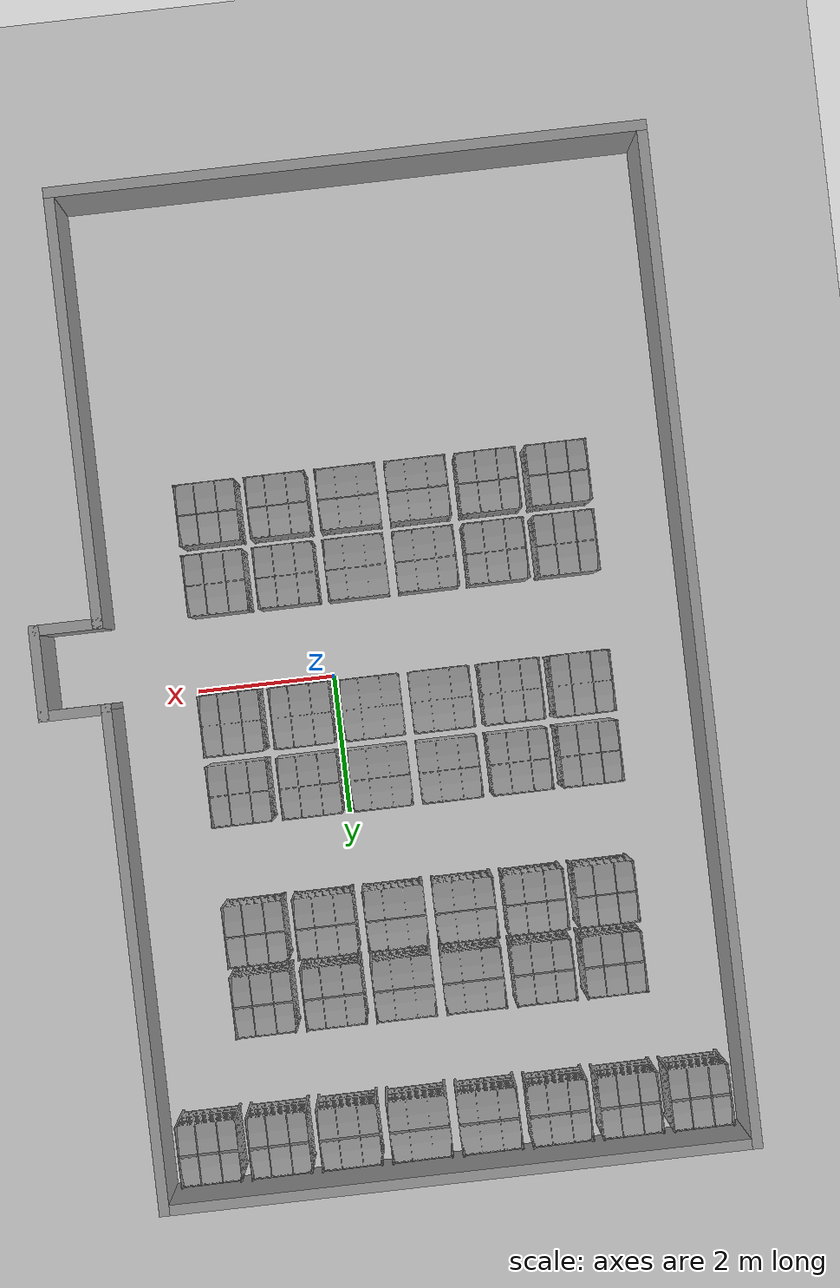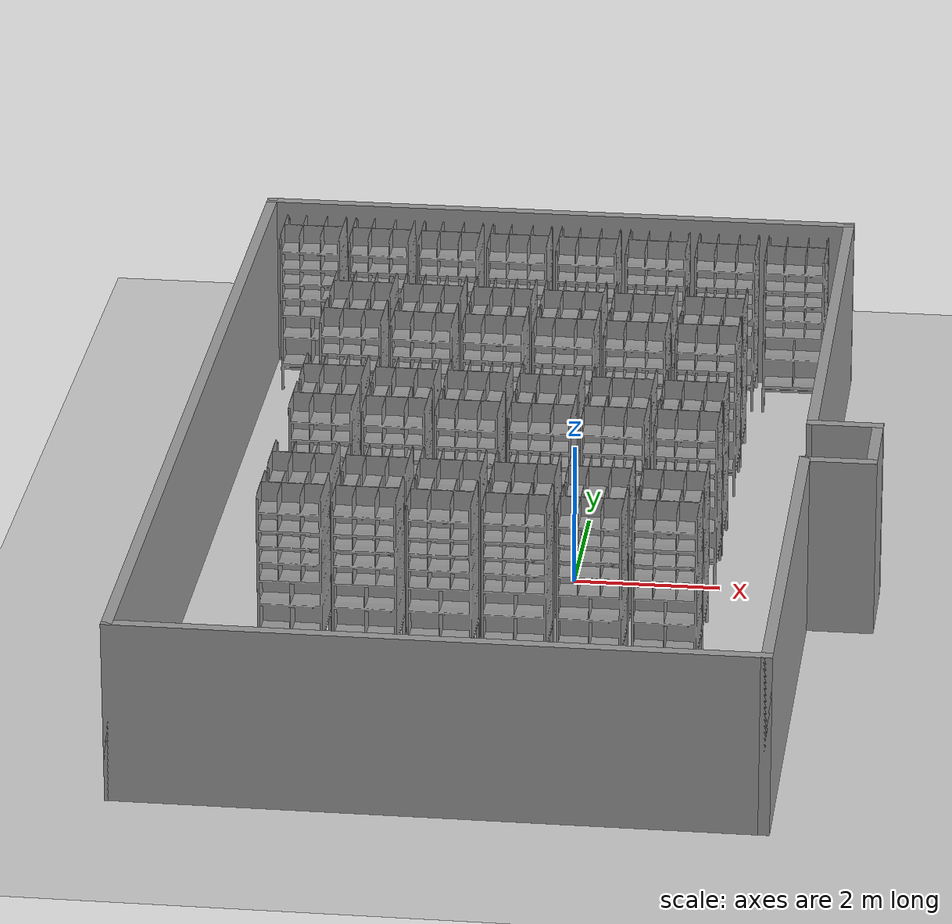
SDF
<sdf version="1.7">
 <world name="default">
  <light name="sun" type="directional">
   <pose>0 0 10 0 -0 0</pose>
   <diffuse>0.8 0.8 0.8 1</diffuse>
   <specular>0.2 0.2 0.2 1</specular>
   <attenuation>
    <range>1000</range>
    <constant>0.9</constant>
    <linear>0.01</linear>
    <quadratic>0.001</quadratic>
   </attenuation>
   <direction>-0.5 0.1 -0.9</direction>
   <spot><inner_angle>0</inner_angle><outer_angle>0</outer_angle><falloff>0</falloff></spot>
  </light>
  <model name="ground_plane">
   <static>1</static>
   <link name="link">
    <collision name="collision">
     <geometry><plane><normal>0 0 1</normal><size>100 100</size></plane></geometry>
     <surface>
      <contact><collide_bitmask>65535</collide_bitmask></contact>
      <friction><ode><mu>100</mu><mu2>50</mu2></ode></friction>
     </surface>
    </collision>
    <visual name="visual">
     <cast_shadows>0</cast_shadows>
     <geometry><plane><normal>0 0 1</normal><size>100 100</size></plane></geometry>
     <material>
      <script><uri>file://media/materials/scripts/gazebo.material</uri><name>Gazebo/Grey</name></script>
     </material>
    </visual>
   </link>
  </model>
  <gravity>0 0 -9.8</gravity>
  <magnetic_field>6e-06 2.3e-05 -4.2e-05</magnetic_field>
  <atmosphere type="adiabatic"/>
  <physics type="ode">
   <max_step_size>0.001</max_step_size>
   <real_time_factor>1</real_time_factor>
   <real_time_update_rate>1000</real_time_update_rate>
  </physics>
  <scene><ambient>0.4 0.4 0.4 1</ambient><background>0.7 0.7 0.7 1</background><shadows>1</shadows></scene>
  <spherical_coordinates>
   <surface_model>EARTH_WGS84</surface_model>
   <latitude_deg>0</latitude_deg>
   <longitude_deg>0</longitude_deg>
   <elevation>0</elevation>
   <heading_deg>0</heading_deg>
  </spherical_coordinates>
  <model name="medium_warehouse">
   <pose>-0.55 -0.005942 0 0 -0 0</pose>
   <link name="Wall_0">
    <collision name="Wall_0_Collision">
     <geometry><box><size>8.55 0.15 2.5</size></box></geometry>
     <pose>0 0 1.25 0 -0 0</pose>
    </collision>
    <visual name="Wall_0_Visual">
     <pose>0 0 1.25 0 -0 0</pose>
     <geometry><box><size>8.55 0.15 2.5</size></box></geometry>
     <material>
      <script><uri>file://media/materials/scripts/gazebo.material</uri><name>Gazebo/Grey</name></script>
      <ambient>1 1 1 1</ambient>
     </material>
     <meta><layer>0</layer></meta>
    </visual>
    <pose>-0.45 -7.20606 0 0 -0 0</pose>
   </link>
   <link name="Wall_11">
    <collision name="Wall_11_Collision">
     <geometry><box><size>14.562 0.15 2.5</size></box></geometry>
     <pose>0 0 1.25 0 -0 0</pose>
    </collision>
    <visual name="Wall_11_Visual">
     <pose>0 0 1.25 0 -0 0</pose>
     <geometry><box><size>14.562 0.15 2.5</size></box></geometry>
     <material>
      <script><uri>file://media/materials/scripts/gazebo.material</uri><name>Gazebo/Grey</name></script>
      <ambient>1 1 1 1</ambient>
     </material>
     <meta><layer>0</layer></meta>
    </visual>
    <pose>-4.65 -5.8e-05 0 0 -0 -1.5708</pose>
   </link>
   <link name="Wall_15">
    <collision name="Wall_15_Collision">
     <geometry><box><size>6.25 0.15 2.5</size></box></geometry>
     <pose>0 0 1.25 0 -0 0</pose>
    </collision>
    <visual name="Wall_15_Visual">
     <pose>0 0 1.25 0 -0 0</pose>
     <geometry><box><size>6.25 0.15 2.5</size></box></geometry>
     <material>
      <script><uri>file://media/materials/scripts/gazebo.material</uri><name>Gazebo/Grey</name></script>
      <ambient>1 1 1 1</ambient>
     </material>
     <meta><layer>0</layer></meta>
    </visual>
    <pose>3.75 -4.15606 0 0 -0 1.5708</pose>
   </link>
   <link name="Wall_16">
    <collision name="Wall_16_Collision">
     <geometry><box><size>1.05 0.15 2.5</size></box></geometry>
     <pose>0 0 1.25 0 -0 0</pose>
    </collision>
    <visual name="Wall_16_Visual">
     <pose>0 0 1.25 0 -0 0</pose>
     <geometry><box><size>1.05 0.15 2.5</size></box></geometry>
     <material>
      <script><uri>file://media/materials/scripts/gazebo.material</uri><name>Gazebo/Grey</name></script>
      <ambient>1 1 1 1</ambient>
     </material>
     <meta><layer>0</layer></meta>
    </visual>
    <pose>4.2 -1.10606 0 0 -0 0</pose>
   </link>
   <link name="Wall_19">
    <collision name="Wall_19_Collision">
     <geometry><box><size>7.25001 0.15 2.5</size></box></geometry>
     <pose>0 0 1.25 0 -0 0</pose>
    </collision>
    <visual name="Wall_19_Visual">
     <pose>0 0 1.25 0 -0 0</pose>
     <geometry><box><size>7.25001 0.15 2.5</size></box></geometry>
     <material>
      <script><uri>file://media/materials/scripts/gazebo.material</uri><name>Gazebo/Grey</name></script>
      <ambient>1 1 1 1</ambient>
     </material>
     <meta><layer>0</layer></meta>
    </visual>
    <pose>3.7555 3.65594 0 0 -0 1.57235</pose>
   </link>
   <link name="Wall_23">
    <collision name="Wall_23_Collision">
     <geometry><box><size>1.362 0.15 2.5</size></box></geometry>
     <pose>0 0 1.25 0 -0 0</pose>
    </collision>
    <visual name="Wall_23_Visual">
     <pose>0 0 1.25 0 -0 0</pose>
     <geometry><box><size>1.362 0.15 2.5</size></box></geometry>
     <material>
      <script><uri>file://media/materials/scripts/gazebo.material</uri><name>Gazebo/Grey</name></script>
      <ambient>1 1 1 1</ambient>
     </material>
     <meta><layer>0</layer></meta>
    </visual>
    <pose>4.65 -0.500058 0 0 -0 1.5708</pose>
   </link>
   <link name="Wall_25">
    <collision name="Wall_25_Collision">
     <geometry><box><size>1.039 0.15 2.5</size></box></geometry>
     <pose>0 0 1.25 0 -0 0</pose>
    </collision>
    <visual name="Wall_25_Visual">
     <pose>0 0 1.25 0 -0 0</pose>
     <geometry><box><size>1.039 0.15 2.5</size></box></geometry>
     <material>
      <script><uri>file://media/materials/scripts/gazebo.material</uri><name>Gazebo/Grey</name></script>
      <ambient>1 1 1 1</ambient>
     </material>
     <meta><layer>0</layer></meta>
    </visual>
    <pose>4.2055 0.105942 0 0 -0 3.14159</pose>
   </link>
   <link name="Wall_9">
    <collision name="Wall_9_Collision">
     <geometry><box><size>8.55 0.15 2.5</size></box></geometry>
     <pose>0 0 1.25 0 -0 0</pose>
    </collision>
    <visual name="Wall_9_Visual">
     <pose>0 0 1.25 0 -0 0</pose>
     <geometry><box><size>8.55 0.15 2.5</size></box></geometry>
     <material>
      <script><uri>file://media/materials/scripts/gazebo.material</uri><name>Gazebo/Grey</name></script>
      <ambient>1 1 1 1</ambient>
     </material>
     <meta><layer>0</layer></meta>
    </visual>
    <pose>-0.45 7.20594 0 0 -0 3.14159</pose>
   </link>
   <static>1</static>
  </model>
  <model name="Amazon Pod">
   <link name="pod_link">
    <inertial>
     <pose>0 0 1.2045 0 -0 0</pose>
     <mass>76.26</mass>
     <inertia>
      <ixx>47</ixx>
      <ixy>-0.003456</ixy>
      <ixz>0.001474</ixz>
      <izz>13.075</izz>
      <iyz>-0.014439</iyz>
      <iyy>47</iyy>
     </inertia>
    </inertial>
    <visual name="pod_visual">
     <pose>0 0 0 1.5707 -0 0</pose>
     <material>
      <script><uri>file://media/materials/scripts/gazebo.material</uri><name>Gazebo/Grey</name></script>
     </material>
     <geometry><mesh><uri>model://kiva_pod/meshes/pod_lowres.stl</uri></mesh></geometry>
    </visual>
    <collision name="pod_collision">
     <pose>0 0 0 1.5707 -0 0</pose>
     <geometry><mesh><uri>model://kiva_pod/meshes/pod_lowres.stl</uri></mesh></geometry>
     <surface>
      <friction><ode><mu>0.8</mu><mu2>0.8</mu2><fdir1>0 0 0</fdir1><slip1>1</slip1><slip2>1</slip2></ode></friction>
     </surface>
    </collision>
   </link>
   <pose>-4.49937 6.50047 9e-06 8.7e-05 -1.1e-05 0.009453</pose>
  </model>
  <model name="Amazon Pod_clone">
   <link name="pod_link">
    <inertial>
     <pose>0 0 1.2045 0 -0 0</pose>
     <mass>76.26</mass>
     <inertia>
      <ixx>47</ixx>
      <ixy>-0.003456</ixy>
      <ixz>0.001474</ixz>
      <izz>13.075</izz>
      <iyz>-0.014439</iyz>
      <iyy>47</iyy>
     </inertia>
    </inertial>
    <visual name="pod_visual">
     <pose>0 0 0 1.5707 -0 0</pose>
     <material>
      <script><uri>file://media/materials/scripts/gazebo.material</uri><name>Gazebo/Grey</name></script>
     </material>
     <geometry><mesh><uri>model://kiva_pod/meshes/pod_lowres.stl</uri></mesh></geometry>
    </visual>
    <collision name="pod_collision">
     <pose>0 0 0 1.5707 -0 0</pose>
     <geometry><mesh><uri>model://kiva_pod/meshes/pod_lowres.stl</uri></mesh></geometry>
     <surface>
      <friction><ode><mu>0.8</mu><mu2>0.8</mu2><fdir1>0 0 0</fdir1><slip1>1</slip1><slip2>1</slip2></ode></friction>
     </surface>
    </collision>
   </link>
   <pose>-3.49948 6.50045 1e-06 0.000101 7e-06 0.008928</pose>
  </model>
  <model name="Amazon Pod_clone_0">
   <link name="pod_link">
    <inertial>
     <pose>0 0 1.2045 0 -0 0</pose>
     <mass>76.26</mass>
     <inertia>
      <ixx>47</ixx>
      <ixy>-0.003456</ixy>
      <ixz>0.001474</ixz>
      <izz>13.075</izz>
      <iyz>-0.014439</iyz>
      <iyy>47</iyy>
     </inertia>
    </inertial>
    <visual name="pod_visual">
     <pose>0 0 0 1.5707 -0 0</pose>
     <material>
      <script><uri>file://media/materials/scripts/gazebo.material</uri><name>Gazebo/Grey</name></script>
     </material>
     <geometry><mesh><uri>model://kiva_pod/meshes/pod_lowres.stl</uri></mesh></geometry>
    </visual>
    <collision name="pod_collision">
     <pose>0 0 0 1.5707 -0 0</pose>
     <geometry><mesh><uri>model://kiva_pod/meshes/pod_lowres.stl</uri></mesh></geometry>
     <surface>
      <friction><ode><mu>0.8</mu><mu2>0.8</mu2><fdir1>0 0 0</fdir1><slip1>1</slip1><slip2>1</slip2></ode></friction>
     </surface>
    </collision>
   </link>
   <pose>-2.49945 6.50048 -0 9.8e-05 -1e-06 0.008801</pose>
  </model>
  <model name="Amazon Pod_clone_1">
   <link name="pod_link">
    <inertial>
     <pose>0 0 1.2045 0 -0 0</pose>
     <mass>76.26</mass>
     <inertia>
      <ixx>47</ixx>
      <ixy>-0.003456</ixy>
      <ixz>0.001474</ixz>
      <izz>13.075</izz>
      <iyz>-0.014439</iyz>
      <iyy>47</iyy>
     </inertia>
    </inertial>
    <visual name="pod_visual">
     <pose>0 0 0 1.5707 -0 0</pose>
     <material>
      <script><uri>file://media/materials/scripts/gazebo.material</uri><name>Gazebo/Grey</name></script>
     </material>
     <geometry><mesh><uri>model://kiva_pod/meshes/pod_lowres.stl</uri></mesh></geometry>
    </visual>
    <collision name="pod_collision">
     <pose>0 0 0 1.5707 -0 0</pose>
     <geometry><mesh><uri>model://kiva_pod/meshes/pod_lowres.stl</uri></mesh></geometry>
     <surface>
      <friction><ode><mu>0.8</mu><mu2>0.8</mu2><fdir1>0 0 0</fdir1><slip1>1</slip1><slip2>1</slip2></ode></friction>
     </surface>
    </collision>
   </link>
   <pose>-1.49951 6.50048 2e-06 9.4e-05 8e-06 0.0076</pose>
  </model>
  <model name="Amazon Pod_clone_2">
   <link name="pod_link">
    <inertial>
     <pose>0 0 1.2045 0 -0 0</pose>
     <mass>76.26</mass>
     <inertia>
      <ixx>47</ixx>
      <ixy>-0.003456</ixy>
      <ixz>0.001474</ixz>
      <izz>13.075</izz>
      <iyz>-0.014439</iyz>
      <iyy>47</iyy>
     </inertia>
    </inertial>
    <visual name="pod_visual">
     <pose>0 0 0 1.5707 -0 0</pose>
     <material>
      <script><uri>file://media/materials/scripts/gazebo.material</uri><name>Gazebo/Grey</name></script>
     </material>
     <geometry><mesh><uri>model://kiva_pod/meshes/pod_lowres.stl</uri></mesh></geometry>
    </visual>
    <collision name="pod_collision">
     <pose>0 0 0 1.5707 -0 0</pose>
     <geometry><mesh><uri>model://kiva_pod/meshes/pod_lowres.stl</uri></mesh></geometry>
     <surface>
      <friction><ode><mu>0.8</mu><mu2>0.8</mu2><fdir1>0 0 0</fdir1><slip1>1</slip1><slip2>1</slip2></ode></friction>
     </surface>
    </collision>
   </link>
   <pose>-0.499565 6.50046 1e-06 0.000106 1e-05 0.008216</pose>
  </model>
  <model name="Amazon Pod_clone_3">
   <link name="pod_link">
    <inertial>
     <pose>0 0 1.2045 0 -0 0</pose>
     <mass>76.26</mass>
     <inertia>
      <ixx>47</ixx>
      <ixy>-0.003456</ixy>
      <ixz>0.001474</ixz>
      <izz>13.075</izz>
      <iyz>-0.014439</iyz>
      <iyy>47</iyy>
     </inertia>
    </inertial>
    <visual name="pod_visual">
     <pose>0 0 0 1.5707 -0 0</pose>
     <material>
      <script><uri>file://media/materials/scripts/gazebo.material</uri><name>Gazebo/Grey</name></script>
     </material>
     <geometry><mesh><uri>model://kiva_pod/meshes/pod_lowres.stl</uri></mesh></geometry>
    </visual>
    <collision name="pod_collision">
     <pose>0 0 0 1.5707 -0 0</pose>
     <geometry><mesh><uri>model://kiva_pod/meshes/pod_lowres.stl</uri></mesh></geometry>
     <surface>
      <friction><ode><mu>0.8</mu><mu2>0.8</mu2><fdir1>0 0 0</fdir1><slip1>1</slip1><slip2>1</slip2></ode></friction>
     </surface>
    </collision>
   </link>
   <pose>0.500474 6.5004 -1e-05 8.3e-05 1.1e-05 0.008032</pose>
  </model>
  <model name="Amazon Pod_clone_4">
   <link name="pod_link">
    <inertial>
     <pose>0 0 1.2045 0 -0 0</pose>
     <mass>76.26</mass>
     <inertia>
      <ixx>47</ixx>
      <ixy>-0.003456</ixy>
      <ixz>0.001474</ixz>
      <izz>13.075</izz>
      <iyz>-0.014439</iyz>
      <iyy>47</iyy>
     </inertia>
    </inertial>
    <visual name="pod_visual">
     <pose>0 0 0 1.5707 -0 0</pose>
     <material>
      <script><uri>file://media/materials/scripts/gazebo.material</uri><name>Gazebo/Grey</name></script>
     </material>
     <geometry><mesh><uri>model://kiva_pod/meshes/pod_lowres.stl</uri></mesh></geometry>
    </visual>
    <collision name="pod_collision">
     <pose>0 0 0 1.5707 -0 0</pose>
     <geometry><mesh><uri>model://kiva_pod/meshes/pod_lowres.stl</uri></mesh></geometry>
     <surface>
      <friction><ode><mu>0.8</mu><mu2>0.8</mu2><fdir1>0 0 0</fdir1><slip1>1</slip1><slip2>1</slip2></ode></friction>
     </surface>
    </collision>
   </link>
   <pose>1.50046 6.50046 3e-06 9.9e-05 -8e-06 0.00685</pose>
  </model>
  <model name="Amazon Pod_clone_5">
   <link name="pod_link">
    <inertial>
     <pose>0 0 1.2045 0 -0 0</pose>
     <mass>76.26</mass>
     <inertia>
      <ixx>47</ixx>
      <ixy>-0.003456</ixy>
      <ixz>0.001474</ixz>
      <izz>13.075</izz>
      <iyz>-0.014439</iyz>
      <iyy>47</iyy>
     </inertia>
    </inertial>
    <visual name="pod_visual">
     <pose>0 0 0 1.5707 -0 0</pose>
     <material>
      <script><uri>file://media/materials/scripts/gazebo.material</uri><name>Gazebo/Grey</name></script>
     </material>
     <geometry><mesh><uri>model://kiva_pod/meshes/pod_lowres.stl</uri></mesh></geometry>
    </visual>
    <collision name="pod_collision">
     <pose>0 0 0 1.5707 -0 0</pose>
     <geometry><mesh><uri>model://kiva_pod/meshes/pod_lowres.stl</uri></mesh></geometry>
     <surface>
      <friction><ode><mu>0.8</mu><mu2>0.8</mu2><fdir1>0 0 0</fdir1><slip1>1</slip1><slip2>1</slip2></ode></friction>
     </surface>
    </collision>
   </link>
   <pose>2.50045 6.50036 -5e-06 8.7e-05 3e-06 0.007302</pose>
  </model>
  <model name="Amazon Pod_clone_6">
   <link name="pod_link">
    <inertial>
     <pose>0 0 1.2045 0 -0 0</pose>
     <mass>76.26</mass>
     <inertia>
      <ixx>47</ixx>
      <ixy>-0.003456</ixy>
      <ixz>0.001474</ixz>
      <izz>13.075</izz>
      <iyz>-0.014439</iyz>
      <iyy>47</iyy>
     </inertia>
    </inertial>
    <visual name="pod_visual">
     <pose>0 0 0 1.5707 -0 0</pose>
     <material>
      <script><uri>file://media/materials/scripts/gazebo.material</uri><name>Gazebo/Grey</name></script>
     </material>
     <geometry><mesh><uri>model://kiva_pod/meshes/pod_lowres.stl</uri></mesh></geometry>
    </visual>
    <collision name="pod_collision">
     <pose>0 0 0 1.5707 -0 0</pose>
     <geometry><mesh><uri>model://kiva_pod/meshes/pod_lowres.stl</uri></mesh></geometry>
     <surface>
      <friction><ode><mu>0.8</mu><mu2>0.8</mu2><fdir1>0 0 0</fdir1><slip1>1</slip1><slip2>1</slip2></ode></friction>
     </surface>
    </collision>
   </link>
   <pose>-3.49961 4.50033 0 9.7e-05 -0 0.006651</pose>
  </model>
  <model name="Amazon Pod_clone_7">
   <link name="pod_link">
    <inertial>
     <pose>0 0 1.2045 0 -0 0</pose>
     <mass>76.26</mass>
     <inertia>
      <ixx>47</ixx>
      <ixy>-0.003456</ixy>
      <ixz>0.001474</ixz>
      <izz>13.075</izz>
      <iyz>-0.014439</iyz>
      <iyy>47</iyy>
     </inertia>
    </inertial>
    <visual name="pod_visual">
     <pose>0 0 0 1.5707 -0 0</pose>
     <material>
      <script><uri>file://media/materials/scripts/gazebo.material</uri><name>Gazebo/Grey</name></script>
     </material>
     <geometry><mesh><uri>model://kiva_pod/meshes/pod_lowres.stl</uri></mesh></geometry>
    </visual>
    <collision name="pod_collision">
     <pose>0 0 0 1.5707 -0 0</pose>
     <geometry><mesh><uri>model://kiva_pod/meshes/pod_lowres.stl</uri></mesh></geometry>
     <surface>
      <friction><ode><mu>0.8</mu><mu2>0.8</mu2><fdir1>0 0 0</fdir1><slip1>1</slip1><slip2>1</slip2></ode></friction>
     </surface>
    </collision>
   </link>
   <pose>-2.49958 4.5003 -0 9.2e-05 -6e-06 0.006768</pose>
  </model>
  <model name="Amazon Pod_clone_8">
   <link name="pod_link">
    <inertial>
     <pose>0 0 1.2045 0 -0 0</pose>
     <mass>76.26</mass>
     <inertia>
      <ixx>47</ixx>
      <ixy>-0.003456</ixy>
      <ixz>0.001474</ixz>
      <izz>13.075</izz>
      <iyz>-0.014439</iyz>
      <iyy>47</iyy>
     </inertia>
    </inertial>
    <visual name="pod_visual">
     <pose>0 0 0 1.5707 -0 0</pose>
     <material>
      <script><uri>file://media/materials/scripts/gazebo.material</uri><name>Gazebo/Grey</name></script>
     </material>
     <geometry><mesh><uri>model://kiva_pod/meshes/pod_lowres.stl</uri></mesh></geometry>
    </visual>
    <collision name="pod_collision">
     <pose>0 0 0 1.5707 -0 0</pose>
     <geometry><mesh><uri>model://kiva_pod/meshes/pod_lowres.stl</uri></mesh></geometry>
     <surface>
      <friction><ode><mu>0.8</mu><mu2>0.8</mu2><fdir1>0 0 0</fdir1><slip1>1</slip1><slip2>1</slip2></ode></friction>
     </surface>
    </collision>
   </link>
   <pose>-1.49967 4.50032 -2e-06 9.8e-05 5e-06 0.006047</pose>
  </model>
  <model name="Amazon Pod_clone_9">
   <link name="pod_link">
    <inertial>
     <pose>0 0 1.2045 0 -0 0</pose>
     <mass>76.26</mass>
     <inertia>
      <ixx>47</ixx>
      <ixy>-0.003456</ixy>
      <ixz>0.001474</ixz>
      <izz>13.075</izz>
      <iyz>-0.014439</iyz>
      <iyy>47</iyy>
     </inertia>
    </inertial>
    <visual name="pod_visual">
     <pose>0 0 0 1.5707 -0 0</pose>
     <material>
      <script><uri>file://media/materials/scripts/gazebo.material</uri><name>Gazebo/Grey</name></script>
     </material>
     <geometry><mesh><uri>model://kiva_pod/meshes/pod_lowres.stl</uri></mesh></geometry>
    </visual>
    <collision name="pod_collision">
     <pose>0 0 0 1.5707 -0 0</pose>
     <geometry><mesh><uri>model://kiva_pod/meshes/pod_lowres.stl</uri></mesh></geometry>
     <surface>
      <friction><ode><mu>0.8</mu><mu2>0.8</mu2><fdir1>0 0 0</fdir1><slip1>1</slip1><slip2>1</slip2></ode></friction>
     </surface>
    </collision>
   </link>
   <pose>-0.499635 4.50034 5e-06 0.0001 -7e-06 0.006312</pose>
  </model>
  <model name="Amazon Pod_clone_10">
   <link name="pod_link">
    <inertial>
     <pose>0 0 1.2045 0 -0 0</pose>
     <mass>76.26</mass>
     <inertia>
      <ixx>47</ixx>
      <ixy>-0.003456</ixy>
      <ixz>0.001474</ixz>
      <izz>13.075</izz>
      <iyz>-0.014439</iyz>
      <iyy>47</iyy>
     </inertia>
    </inertial>
    <visual name="pod_visual">
     <pose>0 0 0 1.5707 -0 0</pose>
     <material>
      <script><uri>file://media/materials/scripts/gazebo.material</uri><name>Gazebo/Grey</name></script>
     </material>
     <geometry><mesh><uri>model://kiva_pod/meshes/pod_lowres.stl</uri></mesh></geometry>
    </visual>
    <collision name="pod_collision">
     <pose>0 0 0 1.5707 -0 0</pose>
     <geometry><mesh><uri>model://kiva_pod/meshes/pod_lowres.stl</uri></mesh></geometry>
     <surface>
      <friction><ode><mu>0.8</mu><mu2>0.8</mu2><fdir1>0 0 0</fdir1><slip1>1</slip1><slip2>1</slip2></ode></friction>
     </surface>
    </collision>
   </link>
   <pose>0.500379 4.50035 2e-06 9.6e-05 -5e-06 0.006698</pose>
  </model>
  <model name="Amazon Pod_clone_11">
   <link name="pod_link">
    <inertial>
     <pose>0 0 1.2045 0 -0 0</pose>
     <mass>76.26</mass>
     <inertia>
      <ixx>47</ixx>
      <ixy>-0.003456</ixy>
      <ixz>0.001474</ixz>
      <izz>13.075</izz>
      <iyz>-0.014439</iyz>
      <iyy>47</iyy>
     </inertia>
    </inertial>
    <visual name="pod_visual">
     <pose>0 0 0 1.5707 -0 0</pose>
     <material>
      <script><uri>file://media/materials/scripts/gazebo.material</uri><name>Gazebo/Grey</name></script>
     </material>
     <geometry><mesh><uri>model://kiva_pod/meshes/pod_lowres.stl</uri></mesh></geometry>
    </visual>
    <collision name="pod_collision">
     <pose>0 0 0 1.5707 -0 0</pose>
     <geometry><mesh><uri>model://kiva_pod/meshes/pod_lowres.stl</uri></mesh></geometry>
     <surface>
      <friction><ode><mu>0.8</mu><mu2>0.8</mu2><fdir1>0 0 0</fdir1><slip1>1</slip1><slip2>1</slip2></ode></friction>
     </surface>
    </collision>
   </link>
   <pose>1.50042 4.5003 2e-06 9.9e-05 -2e-06 0.006509</pose>
  </model>
  <model name="Amazon Pod_clone_12">
   <link name="pod_link">
    <inertial>
     <pose>0 0 1.2045 0 -0 0</pose>
     <mass>76.26</mass>
     <inertia>
      <ixx>47</ixx>
      <ixy>-0.003456</ixy>
      <ixz>0.001474</ixz>
      <izz>13.075</izz>
      <iyz>-0.014439</iyz>
      <iyy>47</iyy>
     </inertia>
    </inertial>
    <visual name="pod_visual">
     <pose>0 0 0 1.5707 -0 0</pose>
     <material>
      <script><uri>file://media/materials/scripts/gazebo.material</uri><name>Gazebo/Grey</name></script>
     </material>
     <geometry><mesh><uri>model://kiva_pod/meshes/pod_lowres.stl</uri></mesh></geometry>
    </visual>
    <collision name="pod_collision">
     <pose>0 0 0 1.5707 -0 0</pose>
     <geometry><mesh><uri>model://kiva_pod/meshes/pod_lowres.stl</uri></mesh></geometry>
     <surface>
      <friction><ode><mu>0.8</mu><mu2>0.8</mu2><fdir1>0 0 0</fdir1><slip1>1</slip1><slip2>1</slip2></ode></friction>
     </surface>
    </collision>
   </link>
   <pose>1.50032 3.50027 -1e-06 9e-05 -8e-06 0.005826</pose>
  </model>
  <model name="Amazon Pod_clone_13">
   <link name="pod_link">
    <inertial>
     <pose>0 0 1.2045 0 -0 0</pose>
     <mass>76.26</mass>
     <inertia>
      <ixx>47</ixx>
      <ixy>-0.003456</ixy>
      <ixz>0.001474</ixz>
      <izz>13.075</izz>
      <iyz>-0.014439</iyz>
      <iyy>47</iyy>
     </inertia>
    </inertial>
    <visual name="pod_visual">
     <pose>0 0 0 1.5707 -0 0</pose>
     <material>
      <script><uri>file://media/materials/scripts/gazebo.material</uri><name>Gazebo/Grey</name></script>
     </material>
     <geometry><mesh><uri>model://kiva_pod/meshes/pod_lowres.stl</uri></mesh></geometry>
    </visual>
    <collision name="pod_collision">
     <pose>0 0 0 1.5707 -0 0</pose>
     <geometry><mesh><uri>model://kiva_pod/meshes/pod_lowres.stl</uri></mesh></geometry>
     <surface>
      <friction><ode><mu>0.8</mu><mu2>0.8</mu2><fdir1>0 0 0</fdir1><slip1>1</slip1><slip2>1</slip2></ode></friction>
     </surface>
    </collision>
   </link>
   <pose>0.500337 3.50025 0 0.000103 -7e-06 0.005384</pose>
  </model>
  <model name="Amazon Pod_clone_14">
   <link name="pod_link">
    <inertial>
     <pose>0 0 1.2045 0 -0 0</pose>
     <mass>76.26</mass>
     <inertia>
      <ixx>47</ixx>
      <ixy>-0.003456</ixy>
      <ixz>0.001474</ixz>
      <izz>13.075</izz>
      <iyz>-0.014439</iyz>
      <iyy>47</iyy>
     </inertia>
    </inertial>
    <visual name="pod_visual">
     <pose>0 0 0 1.5707 -0 0</pose>
     <material>
      <script><uri>file://media/materials/scripts/gazebo.material</uri><name>Gazebo/Grey</name></script>
     </material>
     <geometry><mesh><uri>model://kiva_pod/meshes/pod_lowres.stl</uri></mesh></geometry>
    </visual>
    <collision name="pod_collision">
     <pose>0 0 0 1.5707 -0 0</pose>
     <geometry><mesh><uri>model://kiva_pod/meshes/pod_lowres.stl</uri></mesh></geometry>
     <surface>
      <friction><ode><mu>0.8</mu><mu2>0.8</mu2><fdir1>0 0 0</fdir1><slip1>1</slip1><slip2>1</slip2></ode></friction>
     </surface>
    </collision>
   </link>
   <pose>-0.499734 3.50027 -3e-06 9.6e-05 7e-06 0.005602</pose>
  </model>
  <model name="Amazon Pod_clone_15">
   <link name="pod_link">
    <inertial>
     <pose>0 0 1.2045 0 -0 0</pose>
     <mass>76.26</mass>
     <inertia>
      <ixx>47</ixx>
      <ixy>-0.003456</ixy>
      <ixz>0.001474</ixz>
      <izz>13.075</izz>
      <iyz>-0.014439</iyz>
      <iyy>47</iyy>
     </inertia>
    </inertial>
    <visual name="pod_visual">
     <pose>0 0 0 1.5707 -0 0</pose>
     <material>
      <script><uri>file://media/materials/scripts/gazebo.material</uri><name>Gazebo/Grey</name></script>
     </material>
     <geometry><mesh><uri>model://kiva_pod/meshes/pod_lowres.stl</uri></mesh></geometry>
    </visual>
    <collision name="pod_collision">
     <pose>0 0 0 1.5707 -0 0</pose>
     <geometry><mesh><uri>model://kiva_pod/meshes/pod_lowres.stl</uri></mesh></geometry>
     <surface>
      <friction><ode><mu>0.8</mu><mu2>0.8</mu2><fdir1>0 0 0</fdir1><slip1>1</slip1><slip2>1</slip2></ode></friction>
     </surface>
    </collision>
   </link>
   <pose>-1.49971 3.50029 7e-06 8.2e-05 2e-06 0.005694</pose>
  </model>
  <model name="Amazon Pod_clone_16">
   <link name="pod_link">
    <inertial>
     <pose>0 0 1.2045 0 -0 0</pose>
     <mass>76.26</mass>
     <inertia>
      <ixx>47</ixx>
      <ixy>-0.003456</ixy>
      <ixz>0.001474</ixz>
      <izz>13.075</izz>
      <iyz>-0.014439</iyz>
      <iyy>47</iyy>
     </inertia>
    </inertial>
    <visual name="pod_visual">
     <pose>0 0 0 1.5707 -0 0</pose>
     <material>
      <script><uri>file://media/materials/scripts/gazebo.material</uri><name>Gazebo/Grey</name></script>
     </material>
     <geometry><mesh><uri>model://kiva_pod/meshes/pod_lowres.stl</uri></mesh></geometry>
    </visual>
    <collision name="pod_collision">
     <pose>0 0 0 1.5707 -0 0</pose>
     <geometry><mesh><uri>model://kiva_pod/meshes/pod_lowres.stl</uri></mesh></geometry>
     <surface>
      <friction><ode><mu>0.8</mu><mu2>0.8</mu2><fdir1>0 0 0</fdir1><slip1>1</slip1><slip2>1</slip2></ode></friction>
     </surface>
    </collision>
   </link>
   <pose>-2.49964 3.50025 -2e-06 9.1e-05 0 0.006045</pose>
  </model>
  <model name="Amazon Pod_clone_17">
   <link name="pod_link">
    <inertial>
     <pose>0 0 1.2045 0 -0 0</pose>
     <mass>76.26</mass>
     <inertia>
      <ixx>47</ixx>
      <ixy>-0.003456</ixy>
      <ixz>0.001474</ixz>
      <izz>13.075</izz>
      <iyz>-0.014439</iyz>
      <iyy>47</iyy>
     </inertia>
    </inertial>
    <visual name="pod_visual">
     <pose>0 0 0 1.5707 -0 0</pose>
     <material>
      <script><uri>file://media/materials/scripts/gazebo.material</uri><name>Gazebo/Grey</name></script>
     </material>
     <geometry><mesh><uri>model://kiva_pod/meshes/pod_lowres.stl</uri></mesh></geometry>
    </visual>
    <collision name="pod_collision">
     <pose>0 0 0 1.5707 -0 0</pose>
     <geometry><mesh><uri>model://kiva_pod/meshes/pod_lowres.stl</uri></mesh></geometry>
     <surface>
      <friction><ode><mu>0.8</mu><mu2>0.8</mu2><fdir1>0 0 0</fdir1><slip1>1</slip1><slip2>1</slip2></ode></friction>
     </surface>
    </collision>
   </link>
   <pose>-3.49968 3.50031 -4e-06 9.8e-05 1.2e-05 0.005635</pose>
  </model>
  <model name="Amazon Pod_clone_18">
   <link name="pod_link">
    <inertial>
     <pose>0 0 1.2045 0 -0 0</pose>
     <mass>76.26</mass>
     <inertia>
      <ixx>47</ixx>
      <ixy>-0.003456</ixy>
      <ixz>0.001474</ixz>
      <izz>13.075</izz>
      <iyz>-0.014439</iyz>
      <iyy>47</iyy>
     </inertia>
    </inertial>
    <visual name="pod_visual">
     <pose>0 0 0 1.5707 -0 0</pose>
     <material>
      <script><uri>file://media/materials/scripts/gazebo.material</uri><name>Gazebo/Grey</name></script>
     </material>
     <geometry><mesh><uri>model://kiva_pod/meshes/pod_lowres.stl</uri></mesh></geometry>
    </visual>
    <collision name="pod_collision">
     <pose>0 0 0 1.5707 -0 0</pose>
     <geometry><mesh><uri>model://kiva_pod/meshes/pod_lowres.stl</uri></mesh></geometry>
     <surface>
      <friction><ode><mu>0.8</mu><mu2>0.8</mu2><fdir1>0 0 0</fdir1><slip1>1</slip1><slip2>1</slip2></ode></friction>
     </surface>
    </collision>
   </link>
   <pose>-3.49975 1.50022 -1e-06 9.2e-05 2e-06 0.005903</pose>
  </model>
  <model name="Amazon Pod_clone_19">
   <link name="pod_link">
    <inertial>
     <pose>0 0 1.2045 0 -0 0</pose>
     <mass>76.26</mass>
     <inertia>
      <ixx>47</ixx>
      <ixy>-0.003456</ixy>
      <ixz>0.001474</ixz>
      <izz>13.075</izz>
      <iyz>-0.014439</iyz>
      <iyy>47</iyy>
     </inertia>
    </inertial>
    <visual name="pod_visual">
     <pose>0 0 0 1.5707 -0 0</pose>
     <material>
      <script><uri>file://media/materials/scripts/gazebo.material</uri><name>Gazebo/Grey</name></script>
     </material>
     <geometry><mesh><uri>model://kiva_pod/meshes/pod_lowres.stl</uri></mesh></geometry>
    </visual>
    <collision name="pod_collision">
     <pose>0 0 0 1.5707 -0 0</pose>
     <geometry><mesh><uri>model://kiva_pod/meshes/pod_lowres.stl</uri></mesh></geometry>
     <surface>
      <friction><ode><mu>0.8</mu><mu2>0.8</mu2><fdir1>0 0 0</fdir1><slip1>1</slip1><slip2>1</slip2></ode></friction>
     </surface>
    </collision>
   </link>
   <pose>-2.49975 1.5002 2e-06 9e-05 -1e-06 0.005964</pose>
  </model>
  <model name="Amazon Pod_clone_20">
   <link name="pod_link">
    <inertial>
     <pose>0 0 1.2045 0 -0 0</pose>
     <mass>76.26</mass>
     <inertia>
      <ixx>47</ixx>
      <ixy>-0.003456</ixy>
      <ixz>0.001474</ixz>
      <izz>13.075</izz>
      <iyz>-0.014439</iyz>
      <iyy>47</iyy>
     </inertia>
    </inertial>
    <visual name="pod_visual">
     <pose>0 0 0 1.5707 -0 0</pose>
     <material>
      <script><uri>file://media/materials/scripts/gazebo.material</uri><name>Gazebo/Grey</name></script>
     </material>
     <geometry><mesh><uri>model://kiva_pod/meshes/pod_lowres.stl</uri></mesh></geometry>
    </visual>
    <collision name="pod_collision">
     <pose>0 0 0 1.5707 -0 0</pose>
     <geometry><mesh><uri>model://kiva_pod/meshes/pod_lowres.stl</uri></mesh></geometry>
     <surface>
      <friction><ode><mu>0.8</mu><mu2>0.8</mu2><fdir1>0 0 0</fdir1><slip1>1</slip1><slip2>1</slip2></ode></friction>
     </surface>
    </collision>
   </link>
   <pose>-1.49974 1.50019 -5e-06 9e-05 4e-06 0.005214</pose>
  </model>
  <model name="Amazon Pod_clone_21">
   <link name="pod_link">
    <inertial>
     <pose>0 0 1.2045 0 -0 0</pose>
     <mass>76.26</mass>
     <inertia>
      <ixx>47</ixx>
      <ixy>-0.003456</ixy>
      <ixz>0.001474</ixz>
      <izz>13.075</izz>
      <iyz>-0.014439</iyz>
      <iyy>47</iyy>
     </inertia>
    </inertial>
    <visual name="pod_visual">
     <pose>0 0 0 1.5707 -0 0</pose>
     <material>
      <script><uri>file://media/materials/scripts/gazebo.material</uri><name>Gazebo/Grey</name></script>
     </material>
     <geometry><mesh><uri>model://kiva_pod/meshes/pod_lowres.stl</uri></mesh></geometry>
    </visual>
    <collision name="pod_collision">
     <pose>0 0 0 1.5707 -0 0</pose>
     <geometry><mesh><uri>model://kiva_pod/meshes/pod_lowres.stl</uri></mesh></geometry>
     <surface>
      <friction><ode><mu>0.8</mu><mu2>0.8</mu2><fdir1>0 0 0</fdir1><slip1>1</slip1><slip2>1</slip2></ode></friction>
     </surface>
    </collision>
   </link>
   <pose>-0.499755 1.50021 1e-06 8.4e-05 -1.4e-05 0.005114</pose>
  </model>
  <model name="Amazon Pod_clone_22">
   <link name="pod_link">
    <inertial>
     <pose>0 0 1.2045 0 -0 0</pose>
     <mass>76.26</mass>
     <inertia>
      <ixx>47</ixx>
      <ixy>-0.003456</ixy>
      <ixz>0.001474</ixz>
      <izz>13.075</izz>
      <iyz>-0.014439</iyz>
      <iyy>47</iyy>
     </inertia>
    </inertial>
    <visual name="pod_visual">
     <pose>0 0 0 1.5707 -0 0</pose>
     <material>
      <script><uri>file://media/materials/scripts/gazebo.material</uri><name>Gazebo/Grey</name></script>
     </material>
     <geometry><mesh><uri>model://kiva_pod/meshes/pod_lowres.stl</uri></mesh></geometry>
    </visual>
    <collision name="pod_collision">
     <pose>0 0 0 1.5707 -0 0</pose>
     <geometry><mesh><uri>model://kiva_pod/meshes/pod_lowres.stl</uri></mesh></geometry>
     <surface>
      <friction><ode><mu>0.8</mu><mu2>0.8</mu2><fdir1>0 0 0</fdir1><slip1>1</slip1><slip2>1</slip2></ode></friction>
     </surface>
    </collision>
   </link>
   <pose>0.500284 1.50019 3e-06 8.2e-05 -8e-06 0.004627</pose>
  </model>
  <model name="Amazon Pod_clone_23">
   <link name="pod_link">
    <inertial>
     <pose>0 0 1.2045 0 -0 0</pose>
     <mass>76.26</mass>
     <inertia>
      <ixx>47</ixx>
      <ixy>-0.003456</ixy>
      <ixz>0.001474</ixz>
      <izz>13.075</izz>
      <iyz>-0.014439</iyz>
      <iyy>47</iyy>
     </inertia>
    </inertial>
    <visual name="pod_visual">
     <pose>0 0 0 1.5707 -0 0</pose>
     <material>
      <script><uri>file://media/materials/scripts/gazebo.material</uri><name>Gazebo/Grey</name></script>
     </material>
     <geometry><mesh><uri>model://kiva_pod/meshes/pod_lowres.stl</uri></mesh></geometry>
    </visual>
    <collision name="pod_collision">
     <pose>0 0 0 1.5707 -0 0</pose>
     <geometry><mesh><uri>model://kiva_pod/meshes/pod_lowres.stl</uri></mesh></geometry>
     <surface>
      <friction><ode><mu>0.8</mu><mu2>0.8</mu2><fdir1>0 0 0</fdir1><slip1>1</slip1><slip2>1</slip2></ode></friction>
     </surface>
    </collision>
   </link>
   <pose>1.50024 1.5002 4e-06 9.4e-05 1.1e-05 0.004962</pose>
  </model>
  <model name="Amazon Pod_clone_24">
   <link name="pod_link">
    <inertial>
     <pose>0 0 1.2045 0 -0 0</pose>
     <mass>76.26</mass>
     <inertia>
      <ixx>47</ixx>
      <ixy>-0.003456</ixy>
      <ixz>0.001474</ixz>
      <izz>13.075</izz>
      <iyz>-0.014439</iyz>
      <iyy>47</iyy>
     </inertia>
    </inertial>
    <visual name="pod_visual">
     <pose>0 0 0 1.5707 -0 0</pose>
     <material>
      <script><uri>file://media/materials/scripts/gazebo.material</uri><name>Gazebo/Grey</name></script>
     </material>
     <geometry><mesh><uri>model://kiva_pod/meshes/pod_lowres.stl</uri></mesh></geometry>
    </visual>
    <collision name="pod_collision">
     <pose>0 0 0 1.5707 -0 0</pose>
     <geometry><mesh><uri>model://kiva_pod/meshes/pod_lowres.stl</uri></mesh></geometry>
     <surface>
      <friction><ode><mu>0.8</mu><mu2>0.8</mu2><fdir1>0 0 0</fdir1><slip1>1</slip1><slip2>1</slip2></ode></friction>
     </surface>
    </collision>
   </link>
   <pose>1.50018 0.500146 4e-06 8.5e-05 -2e-06 0.005053</pose>
  </model>
  <model name="Amazon Pod_clone_25">
   <link name="pod_link">
    <inertial>
     <pose>0 0 1.2045 0 -0 0</pose>
     <mass>76.26</mass>
     <inertia>
      <ixx>47</ixx>
      <ixy>-0.003456</ixy>
      <ixz>0.001474</ixz>
      <izz>13.075</izz>
      <iyz>-0.014439</iyz>
      <iyy>47</iyy>
     </inertia>
    </inertial>
    <visual name="pod_visual">
     <pose>0 0 0 1.5707 -0 0</pose>
     <material>
      <script><uri>file://media/materials/scripts/gazebo.material</uri><name>Gazebo/Grey</name></script>
     </material>
     <geometry><mesh><uri>model://kiva_pod/meshes/pod_lowres.stl</uri></mesh></geometry>
    </visual>
    <collision name="pod_collision">
     <pose>0 0 0 1.5707 -0 0</pose>
     <geometry><mesh><uri>model://kiva_pod/meshes/pod_lowres.stl</uri></mesh></geometry>
     <surface>
      <friction><ode><mu>0.8</mu><mu2>0.8</mu2><fdir1>0 0 0</fdir1><slip1>1</slip1><slip2>1</slip2></ode></friction>
     </surface>
    </collision>
   </link>
   <pose>0.500188 0.500155 1e-06 9.1e-05 9e-06 0.005124</pose>
  </model>
  <model name="Amazon Pod_clone_26">
   <link name="pod_link">
    <inertial>
     <pose>0 0 1.2045 0 -0 0</pose>
     <mass>76.26</mass>
     <inertia>
      <ixx>47</ixx>
      <ixy>-0.003456</ixy>
      <ixz>0.001474</ixz>
      <izz>13.075</izz>
      <iyz>-0.014439</iyz>
      <iyy>47</iyy>
     </inertia>
    </inertial>
    <visual name="pod_visual">
     <pose>0 0 0 1.5707 -0 0</pose>
     <material>
      <script><uri>file://media/materials/scripts/gazebo.material</uri><name>Gazebo/Grey</name></script>
     </material>
     <geometry><mesh><uri>model://kiva_pod/meshes/pod_lowres.stl</uri></mesh></geometry>
    </visual>
    <collision name="pod_collision">
     <pose>0 0 0 1.5707 -0 0</pose>
     <geometry><mesh><uri>model://kiva_pod/meshes/pod_lowres.stl</uri></mesh></geometry>
     <surface>
      <friction><ode><mu>0.8</mu><mu2>0.8</mu2><fdir1>0 0 0</fdir1><slip1>1</slip1><slip2>1</slip2></ode></friction>
     </surface>
    </collision>
   </link>
   <pose>-0.4998 0.500174 -8e-06 9.7e-05 -5e-06 0.004888</pose>
  </model>
  <model name="Amazon Pod_clone_27">
   <link name="pod_link">
    <inertial>
     <pose>0 0 1.2045 0 -0 0</pose>
     <mass>76.26</mass>
     <inertia>
      <ixx>47</ixx>
      <ixy>-0.003456</ixy>
      <ixz>0.001474</ixz>
      <izz>13.075</izz>
      <iyz>-0.014439</iyz>
      <iyy>47</iyy>
     </inertia>
    </inertial>
    <visual name="pod_visual">
     <pose>0 0 0 1.5707 -0 0</pose>
     <material>
      <script><uri>file://media/materials/scripts/gazebo.material</uri><name>Gazebo/Grey</name></script>
     </material>
     <geometry><mesh><uri>model://kiva_pod/meshes/pod_lowres.stl</uri></mesh></geometry>
    </visual>
    <collision name="pod_collision">
     <pose>0 0 0 1.5707 -0 0</pose>
     <geometry><mesh><uri>model://kiva_pod/meshes/pod_lowres.stl</uri></mesh></geometry>
     <surface>
      <friction><ode><mu>0.8</mu><mu2>0.8</mu2><fdir1>0 0 0</fdir1><slip1>1</slip1><slip2>1</slip2></ode></friction>
     </surface>
    </collision>
   </link>
   <pose>-1.49976 0.500154 1.1e-05 8.3e-05 -1.1e-05 0.005058</pose>
  </model>
  <model name="Amazon Pod_clone_28">
   <link name="pod_link">
    <inertial>
     <pose>0 0 1.2045 0 -0 0</pose>
     <mass>76.26</mass>
     <inertia>
      <ixx>47</ixx>
      <ixy>-0.003456</ixy>
      <ixz>0.001474</ixz>
      <izz>13.075</izz>
      <iyz>-0.014439</iyz>
      <iyy>47</iyy>
     </inertia>
    </inertial>
    <visual name="pod_visual">
     <pose>0 0 0 1.5707 -0 0</pose>
     <material>
      <script><uri>file://media/materials/scripts/gazebo.material</uri><name>Gazebo/Grey</name></script>
     </material>
     <geometry><mesh><uri>model://kiva_pod/meshes/pod_lowres.stl</uri></mesh></geometry>
    </visual>
    <collision name="pod_collision">
     <pose>0 0 0 1.5707 -0 0</pose>
     <geometry><mesh><uri>model://kiva_pod/meshes/pod_lowres.stl</uri></mesh></geometry>
     <surface>
      <friction><ode><mu>0.8</mu><mu2>0.8</mu2><fdir1>0 0 0</fdir1><slip1>1</slip1><slip2>1</slip2></ode></friction>
     </surface>
    </collision>
   </link>
   <pose>-2.49973 0.500168 -5e-06 0.000109 -2.1e-05 0.004926</pose>
  </model>
  <model name="Amazon Pod_clone_29">
   <link name="pod_link">
    <inertial>
     <pose>0 0 1.2045 0 -0 0</pose>
     <mass>76.26</mass>
     <inertia>
      <ixx>47</ixx>
      <ixy>-0.003456</ixy>
      <ixz>0.001474</ixz>
      <izz>13.075</izz>
      <iyz>-0.014439</iyz>
      <iyy>47</iyy>
     </inertia>
    </inertial>
    <visual name="pod_visual">
     <pose>0 0 0 1.5707 -0 0</pose>
     <material>
      <script><uri>file://media/materials/scripts/gazebo.material</uri><name>Gazebo/Grey</name></script>
     </material>
     <geometry><mesh><uri>model://kiva_pod/meshes/pod_lowres.stl</uri></mesh></geometry>
    </visual>
    <collision name="pod_collision">
     <pose>0 0 0 1.5707 -0 0</pose>
     <geometry><mesh><uri>model://kiva_pod/meshes/pod_lowres.stl</uri></mesh></geometry>
     <surface>
      <friction><ode><mu>0.8</mu><mu2>0.8</mu2><fdir1>0 0 0</fdir1><slip1>1</slip1><slip2>1</slip2></ode></friction>
     </surface>
    </collision>
   </link>
   <pose>-3.49979 0.500167 -6e-06 8.9e-05 -1e-06 0.004577</pose>
  </model>
  <model name="Amazon Pod_clone_30">
   <link name="pod_link">
    <inertial>
     <pose>0 0 1.2045 0 -0 0</pose>
     <mass>76.26</mass>
     <inertia>
      <ixx>47</ixx>
      <ixy>-0.003456</ixy>
      <ixz>0.001474</ixz>
      <izz>13.075</izz>
      <iyz>-0.014439</iyz>
      <iyy>47</iyy>
     </inertia>
    </inertial>
    <visual name="pod_visual">
     <pose>0 0 0 1.5707 -0 0</pose>
     <material>
      <script><uri>file://media/materials/scripts/gazebo.material</uri><name>Gazebo/Grey</name></script>
     </material>
     <geometry><mesh><uri>model://kiva_pod/meshes/pod_lowres.stl</uri></mesh></geometry>
    </visual>
    <collision name="pod_collision">
     <pose>0 0 0 1.5707 -0 0</pose>
     <geometry><mesh><uri>model://kiva_pod/meshes/pod_lowres.stl</uri></mesh></geometry>
     <surface>
      <friction><ode><mu>0.8</mu><mu2>0.8</mu2><fdir1>0 0 0</fdir1><slip1>1</slip1><slip2>1</slip2></ode></friction>
     </surface>
    </collision>
   </link>
   <pose>-3.49985 -1.49987 2e-06 9.7e-05 -6e-06 0.004501</pose>
  </model>
  <model name="Amazon Pod_clone_31">
   <link name="pod_link">
    <inertial>
     <pose>0 0 1.2045 0 -0 0</pose>
     <mass>76.26</mass>
     <inertia>
      <ixx>47</ixx>
      <ixy>-0.003456</ixy>
      <ixz>0.001474</ixz>
      <izz>13.075</izz>
      <iyz>-0.014439</iyz>
      <iyy>47</iyy>
     </inertia>
    </inertial>
    <visual name="pod_visual">
     <pose>0 0 0 1.5707 -0 0</pose>
     <material>
      <script><uri>file://media/materials/scripts/gazebo.material</uri><name>Gazebo/Grey</name></script>
     </material>
     <geometry><mesh><uri>model://kiva_pod/meshes/pod_lowres.stl</uri></mesh></geometry>
    </visual>
    <collision name="pod_collision">
     <pose>0 0 0 1.5707 -0 0</pose>
     <geometry><mesh><uri>model://kiva_pod/meshes/pod_lowres.stl</uri></mesh></geometry>
     <surface>
      <friction><ode><mu>0.8</mu><mu2>0.8</mu2><fdir1>0 0 0</fdir1><slip1>1</slip1><slip2>1</slip2></ode></friction>
     </surface>
    </collision>
   </link>
   <pose>-2.49985 -1.49986 6e-06 9.6e-05 -1.4e-05 0.00472</pose>
  </model>
  <model name="Amazon Pod_clone_32">
   <link name="pod_link">
    <inertial>
     <pose>0 0 1.2045 0 -0 0</pose>
     <mass>76.26</mass>
     <inertia>
      <ixx>47</ixx>
      <ixy>-0.003456</ixy>
      <ixz>0.001474</ixz>
      <izz>13.075</izz>
      <iyz>-0.014439</iyz>
      <iyy>47</iyy>
     </inertia>
    </inertial>
    <visual name="pod_visual">
     <pose>0 0 0 1.5707 -0 0</pose>
     <material>
      <script><uri>file://media/materials/scripts/gazebo.material</uri><name>Gazebo/Grey</name></script>
     </material>
     <geometry><mesh><uri>model://kiva_pod/meshes/pod_lowres.stl</uri></mesh></geometry>
    </visual>
    <collision name="pod_collision">
     <pose>0 0 0 1.5707 -0 0</pose>
     <geometry><mesh><uri>model://kiva_pod/meshes/pod_lowres.stl</uri></mesh></geometry>
     <surface>
      <friction><ode><mu>0.8</mu><mu2>0.8</mu2><fdir1>0 0 0</fdir1><slip1>1</slip1><slip2>1</slip2></ode></friction>
     </surface>
    </collision>
   </link>
   <pose>-1.49987 -1.49987 -3e-06 9.9e-05 -4e-06 0.004666</pose>
  </model>
  <model name="Amazon Pod_clone_33">
   <link name="pod_link">
    <inertial>
     <pose>0 0 1.2045 0 -0 0</pose>
     <mass>76.26</mass>
     <inertia>
      <ixx>47</ixx>
      <ixy>-0.003456</ixy>
      <ixz>0.001474</ixz>
      <izz>13.075</izz>
      <iyz>-0.014439</iyz>
      <iyy>47</iyy>
     </inertia>
    </inertial>
    <visual name="pod_visual">
     <pose>0 0 0 1.5707 -0 0</pose>
     <material>
      <script><uri>file://media/materials/scripts/gazebo.material</uri><name>Gazebo/Grey</name></script>
     </material>
     <geometry><mesh><uri>model://kiva_pod/meshes/pod_lowres.stl</uri></mesh></geometry>
    </visual>
    <collision name="pod_collision">
     <pose>0 0 0 1.5707 -0 0</pose>
     <geometry><mesh><uri>model://kiva_pod/meshes/pod_lowres.stl</uri></mesh></geometry>
     <surface>
      <friction><ode><mu>0.8</mu><mu2>0.8</mu2><fdir1>0 0 0</fdir1><slip1>1</slip1><slip2>1</slip2></ode></friction>
     </surface>
    </collision>
   </link>
   <pose>-0.49987 -1.49989 1e-06 9.9e-05 -1e-06 0.004719</pose>
  </model>
  <model name="Amazon Pod_clone_34">
   <link name="pod_link">
    <inertial>
     <pose>0 0 1.2045 0 -0 0</pose>
     <mass>76.26</mass>
     <inertia>
      <ixx>47</ixx>
      <ixy>-0.003456</ixy>
      <ixz>0.001474</ixz>
      <izz>13.075</izz>
      <iyz>-0.014439</iyz>
      <iyy>47</iyy>
     </inertia>
    </inertial>
    <visual name="pod_visual">
     <pose>0 0 0 1.5707 -0 0</pose>
     <material>
      <script><uri>file://media/materials/scripts/gazebo.material</uri><name>Gazebo/Grey</name></script>
     </material>
     <geometry><mesh><uri>model://kiva_pod/meshes/pod_lowres.stl</uri></mesh></geometry>
    </visual>
    <collision name="pod_collision">
     <pose>0 0 0 1.5707 -0 0</pose>
     <geometry><mesh><uri>model://kiva_pod/meshes/pod_lowres.stl</uri></mesh></geometry>
     <surface>
      <friction><ode><mu>0.8</mu><mu2>0.8</mu2><fdir1>0 0 0</fdir1><slip1>1</slip1><slip2>1</slip2></ode></friction>
     </surface>
    </collision>
   </link>
   <pose>0.500117 -1.49991 2e-06 0.000102 -0 0.004599</pose>
  </model>
  <model name="Amazon Pod_clone_35">
   <link name="pod_link">
    <inertial>
     <pose>0 0 1.2045 0 -0 0</pose>
     <mass>76.26</mass>
     <inertia>
      <ixx>47</ixx>
      <ixy>-0.003456</ixy>
      <ixz>0.001474</ixz>
      <izz>13.075</izz>
      <iyz>-0.014439</iyz>
      <iyy>47</iyy>
     </inertia>
    </inertial>
    <visual name="pod_visual">
     <pose>0 0 0 1.5707 -0 0</pose>
     <material>
      <script><uri>file://media/materials/scripts/gazebo.material</uri><name>Gazebo/Grey</name></script>
     </material>
     <geometry><mesh><uri>model://kiva_pod/meshes/pod_lowres.stl</uri></mesh></geometry>
    </visual>
    <collision name="pod_collision">
     <pose>0 0 0 1.5707 -0 0</pose>
     <geometry><mesh><uri>model://kiva_pod/meshes/pod_lowres.stl</uri></mesh></geometry>
     <surface>
      <friction><ode><mu>0.8</mu><mu2>0.8</mu2><fdir1>0 0 0</fdir1><slip1>1</slip1><slip2>1</slip2></ode></friction>
     </surface>
    </collision>
   </link>
   <pose>1.50009 -1.4999 2e-06 0.000102 -0 0.004534</pose>
  </model>
  <model name="Amazon Pod_clone_36">
   <link name="pod_link">
    <inertial>
     <pose>0 0 1.2045 0 -0 0</pose>
     <mass>76.26</mass>
     <inertia>
      <ixx>47</ixx>
      <ixy>-0.003456</ixy>
      <ixz>0.001474</ixz>
      <izz>13.075</izz>
      <iyz>-0.014439</iyz>
      <iyy>47</iyy>
     </inertia>
    </inertial>
    <visual name="pod_visual">
     <pose>0 0 0 1.5707 -0 0</pose>
     <material>
      <script><uri>file://media/materials/scripts/gazebo.material</uri><name>Gazebo/Grey</name></script>
     </material>
     <geometry><mesh><uri>model://kiva_pod/meshes/pod_lowres.stl</uri></mesh></geometry>
    </visual>
    <collision name="pod_collision">
     <pose>0 0 0 1.5707 -0 0</pose>
     <geometry><mesh><uri>model://kiva_pod/meshes/pod_lowres.stl</uri></mesh></geometry>
     <surface>
      <friction><ode><mu>0.8</mu><mu2>0.8</mu2><fdir1>0 0 0</fdir1><slip1>1</slip1><slip2>1</slip2></ode></friction>
     </surface>
    </collision>
   </link>
   <pose>1.50001 -2.49997 3e-06 9.2e-05 1.2e-05 0.004639</pose>
  </model>
  <model name="Amazon Pod_clone_37">
   <link name="pod_link">
    <inertial>
     <pose>0 0 1.2045 0 -0 0</pose>
     <mass>76.26</mass>
     <inertia>
      <ixx>47</ixx>
      <ixy>-0.003456</ixy>
      <ixz>0.001474</ixz>
      <izz>13.075</izz>
      <iyz>-0.014439</iyz>
      <iyy>47</iyy>
     </inertia>
    </inertial>
    <visual name="pod_visual">
     <pose>0 0 0 1.5707 -0 0</pose>
     <material>
      <script><uri>file://media/materials/scripts/gazebo.material</uri><name>Gazebo/Grey</name></script>
     </material>
     <geometry><mesh><uri>model://kiva_pod/meshes/pod_lowres.stl</uri></mesh></geometry>
    </visual>
    <collision name="pod_collision">
     <pose>0 0 0 1.5707 -0 0</pose>
     <geometry><mesh><uri>model://kiva_pod/meshes/pod_lowres.stl</uri></mesh></geometry>
     <surface>
      <friction><ode><mu>0.8</mu><mu2>0.8</mu2><fdir1>0 0 0</fdir1><slip1>1</slip1><slip2>1</slip2></ode></friction>
     </surface>
    </collision>
   </link>
   <pose>0.50004 -2.49996 -4e-06 0.000103 3e-06 0.004643</pose>
  </model>
  <model name="Amazon Pod_clone_38">
   <link name="pod_link">
    <inertial>
     <pose>0 0 1.2045 0 -0 0</pose>
     <mass>76.26</mass>
     <inertia>
      <ixx>47</ixx>
      <ixy>-0.003456</ixy>
      <ixz>0.001474</ixz>
      <izz>13.075</izz>
      <iyz>-0.014439</iyz>
      <iyy>47</iyy>
     </inertia>
    </inertial>
    <visual name="pod_visual">
     <pose>0 0 0 1.5707 -0 0</pose>
     <material>
      <script><uri>file://media/materials/scripts/gazebo.material</uri><name>Gazebo/Grey</name></script>
     </material>
     <geometry><mesh><uri>model://kiva_pod/meshes/pod_lowres.stl</uri></mesh></geometry>
    </visual>
    <collision name="pod_collision">
     <pose>0 0 0 1.5707 -0 0</pose>
     <geometry><mesh><uri>model://kiva_pod/meshes/pod_lowres.stl</uri></mesh></geometry>
     <surface>
      <friction><ode><mu>0.8</mu><mu2>0.8</mu2><fdir1>0 0 0</fdir1><slip1>1</slip1><slip2>1</slip2></ode></friction>
     </surface>
    </collision>
   </link>
   <pose>-0.499982 -2.49994 1.4e-05 9.9e-05 3.4e-05 0.004174</pose>
  </model>
  <model name="Amazon Pod_clone_39">
   <link name="pod_link">
    <inertial>
     <pose>0 0 1.2045 0 -0 0</pose>
     <mass>76.26</mass>
     <inertia>
      <ixx>47</ixx>
      <ixy>-0.003456</ixy>
      <ixz>0.001474</ixz>
      <izz>13.075</izz>
      <iyz>-0.014439</iyz>
      <iyy>47</iyy>
     </inertia>
    </inertial>
    <visual name="pod_visual">
     <pose>0 0 0 1.5707 -0 0</pose>
     <material>
      <script><uri>file://media/materials/scripts/gazebo.material</uri><name>Gazebo/Grey</name></script>
     </material>
     <geometry><mesh><uri>model://kiva_pod/meshes/pod_lowres.stl</uri></mesh></geometry>
    </visual>
    <collision name="pod_collision">
     <pose>0 0 0 1.5707 -0 0</pose>
     <geometry><mesh><uri>model://kiva_pod/meshes/pod_lowres.stl</uri></mesh></geometry>
     <surface>
      <friction><ode><mu>0.8</mu><mu2>0.8</mu2><fdir1>0 0 0</fdir1><slip1>1</slip1><slip2>1</slip2></ode></friction>
     </surface>
    </collision>
   </link>
   <pose>-1.4999 -2.49994 -1e-06 9.1e-05 -1.5e-05 0.004682</pose>
  </model>
  <model name="Amazon Pod_clone_40">
   <link name="pod_link">
    <inertial>
     <pose>0 0 1.2045 0 -0 0</pose>
     <mass>76.26</mass>
     <inertia>
      <ixx>47</ixx>
      <ixy>-0.003456</ixy>
      <ixz>0.001474</ixz>
      <izz>13.075</izz>
      <iyz>-0.014439</iyz>
      <iyy>47</iyy>
     </inertia>
    </inertial>
    <visual name="pod_visual">
     <pose>0 0 0 1.5707 -0 0</pose>
     <material>
      <script><uri>file://media/materials/scripts/gazebo.material</uri><name>Gazebo/Grey</name></script>
     </material>
     <geometry><mesh><uri>model://kiva_pod/meshes/pod_lowres.stl</uri></mesh></geometry>
    </visual>
    <collision name="pod_collision">
     <pose>0 0 0 1.5707 -0 0</pose>
     <geometry><mesh><uri>model://kiva_pod/meshes/pod_lowres.stl</uri></mesh></geometry>
     <surface>
      <friction><ode><mu>0.8</mu><mu2>0.8</mu2><fdir1>0 0 0</fdir1><slip1>1</slip1><slip2>1</slip2></ode></friction>
     </surface>
    </collision>
   </link>
   <pose>-2.49994 -2.49994 -0 8.7e-05 7e-06 0.00428</pose>
  </model>
  <model name="Amazon Pod_clone_41">
   <link name="pod_link">
    <inertial>
     <pose>0 0 1.2045 0 -0 0</pose>
     <mass>76.26</mass>
     <inertia>
      <ixx>47</ixx>
      <ixy>-0.003456</ixy>
      <ixz>0.001474</ixz>
      <izz>13.075</izz>
      <iyz>-0.014439</iyz>
      <iyy>47</iyy>
     </inertia>
    </inertial>
    <visual name="pod_visual">
     <pose>0 0 0 1.5707 -0 0</pose>
     <material>
      <script><uri>file://media/materials/scripts/gazebo.material</uri><name>Gazebo/Grey</name></script>
     </material>
     <geometry><mesh><uri>model://kiva_pod/meshes/pod_lowres.stl</uri></mesh></geometry>
    </visual>
    <collision name="pod_collision">
     <pose>0 0 0 1.5707 -0 0</pose>
     <geometry><mesh><uri>model://kiva_pod/meshes/pod_lowres.stl</uri></mesh></geometry>
     <surface>
      <friction><ode><mu>0.8</mu><mu2>0.8</mu2><fdir1>0 0 0</fdir1><slip1>1</slip1><slip2>1</slip2></ode></friction>
     </surface>
    </collision>
   </link>
   <pose>-3.4999 -2.49993 7e-06 9.1e-05 -1.1e-05 0.004269</pose>
  </model>
 </world>
</sdf>
